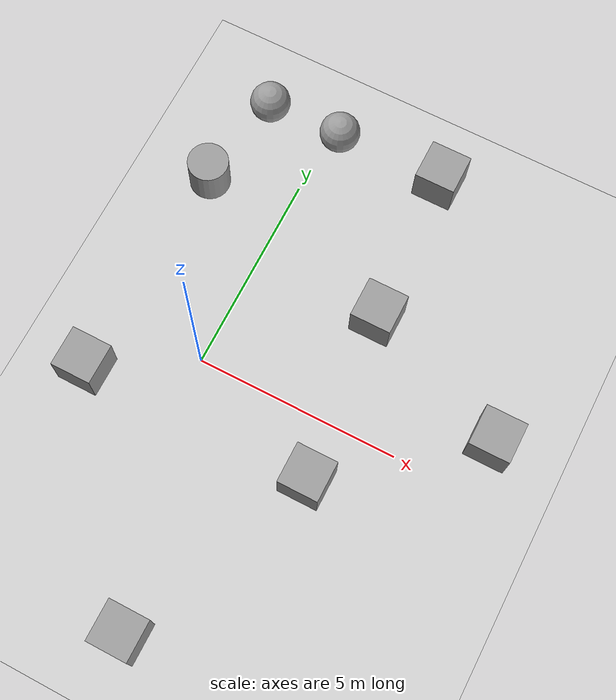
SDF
<sdf version="1.7">
 <world name="default">
  <light name="sun" type="directional">
   <pose>0 0 10 0 -0 0</pose>
   <diffuse>0.8 0.8 0.8 1</diffuse>
   <specular>0.2 0.2 0.2 1</specular>
   <attenuation>
    <range>1000</range>
    <constant>0.9</constant>
    <linear>0.01</linear>
    <quadratic>0.001</quadratic>
   </attenuation>
   <direction>-0.5 0.1 -0.9</direction>
   <spot><inner_angle>0</inner_angle><outer_angle>0</outer_angle><falloff>0</falloff></spot>
  </light>
  <model name="ground_plane">
   <static>1</static>
   <link name="link">
    <collision name="collision">
     <geometry><plane><normal>0 0 1</normal><size>100 100</size></plane></geometry>
     <surface><friction><ode><mu>100</mu><mu2>50</mu2></ode></friction></surface>
    </collision>
    <visual name="visual">
     <cast_shadows>0</cast_shadows>
     <geometry><plane><normal>0 0 1</normal><size>100 100</size></plane></geometry>
     <material>
      <script><uri>file://media/materials/scripts/gazebo.material</uri><name>Gazebo/Grey</name></script>
     </material>
    </visual>
   </link>
  </model>
  <gravity>0 0 -9.8</gravity>
  <magnetic_field>6e-06 2.3e-05 -4.2e-05</magnetic_field>
  <atmosphere type="adiabatic"/>
  <physics type="ode">
   <max_step_size>0.001</max_step_size>
   <real_time_factor>1</real_time_factor>
   <real_time_update_rate>1000</real_time_update_rate>
  </physics>
  <scene><ambient>0.4 0.4 0.4 1</ambient><background>0.7 0.7 0.7 1</background><shadows>1</shadows></scene>
  <spherical_coordinates>
   <surface_model>EARTH_WGS84</surface_model>
   <latitude_deg>0</latitude_deg>
   <longitude_deg>0</longitude_deg>
   <elevation>0</elevation>
   <heading_deg>0</heading_deg>
  </spherical_coordinates>
  <model name="unit_box">
   <pose>3.495 -1.41471 0.499995 0 1e-05 0</pose>
   <link name="link">
    <inertial>
     <mass>1</mass>
     <inertia>
      <ixx>0.166667</ixx>
      <ixy>0</ixy>
      <ixz>0</ixz>
      <iyy>0.166667</iyy>
      <iyz>0</iyz>
      <izz>0.166667</izz>
     </inertia>
    </inertial>
    <collision name="collision"><geometry><box><size>1 1 1</size></box></geometry></collision>
    <visual name="visual">
     <geometry><box><size>1 1 1</size></box></geometry>
     <material>
      <script><name>Gazebo/Grey</name><uri>file://media/materials/scripts/gazebo.material</uri></script>
     </material>
    </visual>
   </link>
  </model>
  <model name="unit_cylinder">
   <pose>-2.05206 4.19217 0.499998 3e-06 -3e-06 0</pose>
   <link name="link">
    <inertial>
     <mass>1</mass>
     <inertia><ixx>0.145833</ixx><ixy>0</ixy><ixz>0</ixz><iyy>0.145833</iyy><iyz>0</iyz><izz>0.125</izz></inertia>
    </inertial>
    <collision name="collision">
     <geometry><cylinder><radius>0.5</radius><length>1</length></cylinder></geometry>
    </collision>
    <visual name="visual">
     <geometry><cylinder><radius>0.5</radius><length>1</length></cylinder></geometry>
     <material>
      <script><name>Gazebo/Grey</name><uri>file://media/materials/scripts/gazebo.material</uri></script>
     </material>
    </visual>
   </link>
  </model>
  <model name="unit_box_0">
   <pose>3.18755 2.80002 0.499995 0 1e-05 0</pose>
   <link name="link">
    <inertial>
     <mass>1</mass>
     <inertia>
      <ixx>0.166667</ixx>
      <ixy>0</ixy>
      <ixz>0</ixz>
      <iyy>0.166667</iyy>
      <iyz>0</iyz>
      <izz>0.166667</izz>
     </inertia>
    </inertial>
    <collision name="collision"><geometry><box><size>1 1 1</size></box></geometry></collision>
    <visual name="visual">
     <geometry><box><size>1 1 1</size></box></geometry>
     <material>
      <script><name>Gazebo/Grey</name><uri>file://media/materials/scripts/gazebo.material</uri></script>
     </material>
    </visual>
   </link>
  </model>
  <model name="unit_box_1">
   <pose>-2.2667 -1.37847 0.499995 -1e-05 -0 -0</pose>
   <link name="link">
    <inertial>
     <mass>1</mass>
     <inertia>
      <ixx>0.166667</ixx>
      <ixy>0</ixy>
      <ixz>0</ixz>
      <iyy>0.166667</iyy>
      <iyz>0</iyz>
      <izz>0.166667</izz>
     </inertia>
    </inertial>
    <collision name="collision"><geometry><box><size>1 1 1</size></box></geometry></collision>
    <visual name="visual">
     <geometry><box><size>1 1 1</size></box></geometry>
     <material>
      <script><name>Gazebo/Grey</name><uri>file://media/materials/scripts/gazebo.material</uri></script>
     </material>
    </visual>
   </link>
  </model>
  <model name="unit_box_2">
   <pose>6.84412 1.29456 0.499995 0 1e-05 0</pose>
   <link name="link">
    <inertial>
     <mass>1</mass>
     <inertia>
      <ixx>0.166667</ixx>
      <ixy>0</ixy>
      <ixz>0</ixz>
      <iyy>0.166667</iyy>
      <iyz>0</iyz>
      <izz>0.166667</izz>
     </inertia>
    </inertial>
    <collision name="collision"><geometry><box><size>1 1 1</size></box></geometry></collision>
    <visual name="visual">
     <geometry><box><size>1 1 1</size></box></geometry>
     <material>
      <script><name>Gazebo/Grey</name><uri>file://media/materials/scripts/gazebo.material</uri></script>
     </material>
    </visual>
   </link>
  </model>
  <model name="unit_sphere">
   <pose>0.281092 6.60409 0.5 0 -0 0</pose>
   <link name="link">
    <inertial>
     <mass>1</mass>
     <inertia><ixx>0.1</ixx><ixy>0</ixy><ixz>0</ixz><iyy>0.1</iyy><iyz>0</iyz><izz>0.1</izz></inertia>
    </inertial>
    <collision name="collision"><geometry><sphere><radius>0.5</radius></sphere></geometry></collision>
    <visual name="visual">
     <geometry><sphere><radius>0.5</radius></sphere></geometry>
     <material>
      <script><name>Gazebo/Grey</name><uri>file://media/materials/scripts/gazebo.material</uri></script>
     </material>
    </visual>
   </link>
  </model>
  <model name="unit_box_3">
   <pose>1.51252 -6.25923 0.499995 0 1e-05 0</pose>
   <link name="link">
    <inertial>
     <mass>1</mass>
     <inertia>
      <ixx>0.166667</ixx>
      <ixy>0</ixy>
      <ixz>0</ixz>
      <iyy>0.166667</iyy>
      <iyz>0</iyz>
      <izz>0.166667</izz>
     </inertia>
    </inertial>
    <collision name="collision"><geometry><box><size>1 1 1</size></box></geometry></collision>
    <visual name="visual">
     <geometry><box><size>1 1 1</size></box></geometry>
     <material>
      <script><name>Gazebo/Grey</name><uri>file://media/materials/scripts/gazebo.material</uri></script>
     </material>
    </visual>
   </link>
  </model>
  <light name="user_point_light_0" type="point">
   <pose>17.1678 -19.5365 1 0 -0 0</pose>
   <diffuse>0.5 0.5 0.5 1</diffuse>
   <specular>0.1 0.1 0.1 1</specular>
   <attenuation>
    <range>20</range>
    <constant>0.5</constant>
    <linear>0.01</linear>
    <quadratic>0.001</quadratic>
   </attenuation>
   <cast_shadows>0</cast_shadows>
   <direction>0 0 -1</direction>
  </light>
  <model name="unit_box_4">
   <pose>2.98481 6.66402 0.499995 -1e-05 -0 -0</pose>
   <link name="link">
    <inertial>
     <mass>1</mass>
     <inertia>
      <ixx>0.166667</ixx>
      <ixy>0</ixy>
      <ixz>0</ixz>
      <iyy>0.166667</iyy>
      <iyz>0</iyz>
      <izz>0.166667</izz>
     </inertia>
    </inertial>
    <collision name="collision"><geometry><box><size>1 1 1</size></box></geometry></collision>
    <visual name="visual">
     <geometry><box><size>1 1 1</size></box></geometry>
     <material>
      <script><name>Gazebo/Grey</name><uri>file://media/materials/scripts/gazebo.material</uri></script>
     </material>
    </visual>
   </link>
  </model>
  <model name="unit_sphere_0">
   <pose>-1.62186 6.56522 0.5 0 -0 0</pose>
   <link name="link">
    <inertial>
     <mass>1</mass>
     <inertia><ixx>0.1</ixx><ixy>0</ixy><ixz>0</ixz><iyy>0.1</iyy><iyz>0</iyz><izz>0.1</izz></inertia>
    </inertial>
    <collision name="collision"><geometry><sphere><radius>0.5</radius></sphere></geometry></collision>
    <visual name="visual">
     <geometry><sphere><radius>0.5</radius></sphere></geometry>
     <material>
      <script><name>Gazebo/Grey</name><uri>file://media/materials/scripts/gazebo.material</uri></script>
     </material>
    </visual>
   </link>
  </model>
 </world>
</sdf>
